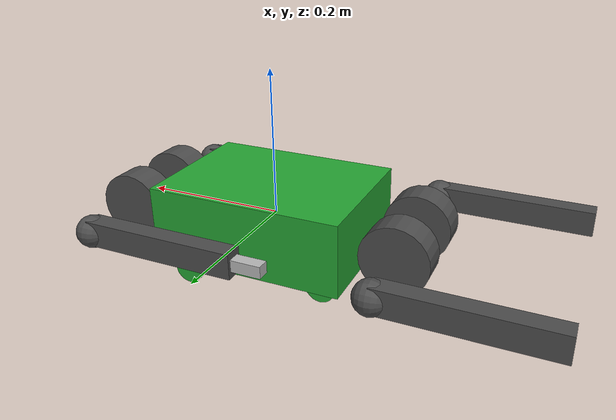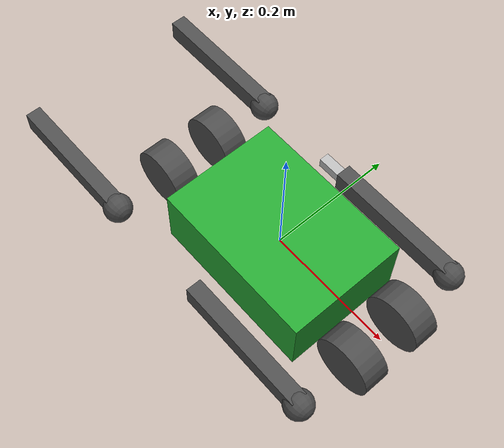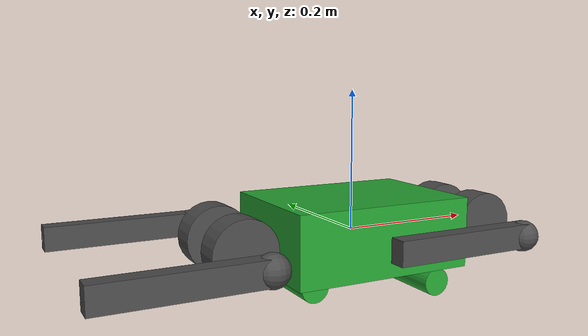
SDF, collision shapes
<sdf version='1.7'>
  <model name='go2_description'>
    <link name='body'>
      <inertial>
        <pose>0.021109 0 -0.005366 0 -0 0</pose>
        <mass>6.922</mass>
        <inertia>
          <ixx>0.02458</ixx>
          <ixy>0.00012166</ixy>
          <ixz>0.00148501</ixz>
          <iyy>0.0981775</iyy>
          <iyz>-3.12e-05</iyz>
          <izz>0.1071</izz>
        </inertia>
      </inertial>
      <collision name='body_collision_collision'>
        <pose>0 0 0 0 -0 0</pose>
        <geometry>
          <box>
            <size>0.267 0.19 0.1</size>
          </box>
        </geometry>
        <surface>
          <contact>
            <ode/>
          </contact>
          <friction>
            <ode/>
          </friction>
        </surface>
      </collision>
      <collision name='body_fixed_joint_lump__imu_link_collision_1'>
        <pose>0 0 0 0 -0 0</pose>
        <geometry>
          <box>
            <size>0.001 0.001 0.001</size>
          </box>
        </geometry>
        <surface>
          <contact>
            <ode/>
          </contact>
          <friction>
            <ode>
              <mu>0.2</mu>
              <mu2>0.2</mu2>
            </ode>
          </friction>
        </surface>
      </collision>
      <collision name='body_fixed_joint_lump__front_pad_collision_2'>
        <pose>0.1 0 -0.075 1.5708 -0 0</pose>
        <geometry>
          <cylinder>
            <length>0.15</length>
            <radius>0.02</radius>
          </cylinder>
        </geometry>
      </collision>
      <collision name='body_fixed_joint_lump__rear_pad_collision_3'>
        <pose>-0.1 0 -0.055 1.5708 -0 0</pose>
        <geometry>
          <cylinder>
            <length>0.15</length>
            <radius>0.02</radius>
          </cylinder>
        </geometry>
      </collision>
      <visual name='body_visual'>
        <pose>0 0 0 0 -0 0</pose>
        <geometry>
          <box>
            <size>0.001 0.001 0.001</size>
          </box>
        </geometry>
        <material>
          <script>
            <name>Gazebo/Green</name>
            <uri>file://media/materials/scripts/gazebo.material</uri>
          </script>
        </material>
      </visual>
      <visual name='body_visual_visual_1'>
        <pose>0 0 0 0 -0 0</pose>
        <geometry>
          <mesh>
            <scale>1 1 1</scale>
            <uri>model://go2_description/meshes/trunk.dae</uri>
          </mesh>
        </geometry>
        <material>
          <script>
            <name>Gazebo/Green</name>
            <uri>file://media/materials/scripts/gazebo.material</uri>
          </script>
        </material>
      </visual>
      <visual name='body_fixed_joint_lump__imu_link_visual_2'>
        <pose>0 0 0 0 -0 0</pose>
        <geometry>
          <box>
            <size>0.001 0.001 0.001</size>
          </box>
        </geometry>
        <material>
          <script>
            <name>Gazebo/Red</name>
            <uri>file://media/materials/scripts/gazebo.material</uri>
          </script>
        </material>
      </visual>
      <gravity>1</gravity>
      <gravity>1</gravity>
      <sensor name='imu_sensor' type='imu'>
        <always_on>1</always_on>
        <update_rate>1000</update_rate>
        <visualize>1</visualize>
        <topic>__default_topic__</topic>
        <plugin name='imu_plugin' filename='libgazebo_ros_imu_sensor.so'>
          <topicName>trunk_imu</topicName>
          <bodyName>imu_link</bodyName>
          <updateRateHZ>1000.0</updateRateHZ>
          <gaussianNoise>0.0</gaussianNoise>
          <xyzOffset>0 0 0</xyzOffset>
          <rpyOffset>0 0 0</rpyOffset>
          <frameName>imu_link</frameName>
        </plugin>
        <pose>0 0 0 0 -0 0</pose>
      </sensor>
    </link>

        <!-- Define the new link for the payload -->
    <link name="payload_link">
      <pose frame=''>0 0 0 0 0 0</pose>
      <inertial>
        <mass>0.001</mass>
        <inertia>
          <ixx>0.0</ixx>
          <iyy>0.0</iyy>
          <izz>0.0</izz>
        </inertia>
      </inertial>
      <collision name="payload_collision">
        <geometry>
          <box>
            <size>0.02 0.01 0.01</size>
          </box>
        </geometry>
      </collision>
      <visual name="payload_visual">
        <geometry>
          <box>
            <size>0.2 0.1 0.1</size>
          </box>
        </geometry>
        <material>
          <ambient>1 0 0 1</ambient>
          <diffuse>0 1 0 1</diffuse>
        </material>
      </visual>
    </link>

    <joint name="payload_joint" type="fixed">
      <parent>body</parent>
      <child>payload_link</child>
      <pose frame=''>0 0 0.11 0 0 0</pose>
    </joint>

    <joint name='10' type='revolute'>
      <pose relative_to='body'>0.1934 -0.0465 0 0 -0 0</pose>
      <parent>body</parent>
      <child>hip2</child>
      <axis>
        <xyz>1 0 0</xyz>
        <limit>
          <lower>-0.802851</lower>
          <upper>0.802851</upper>
          <effort>23.7</effort>
          <velocity>30</velocity>
        </limit>
        <dynamics>
          <damping>0</damping>
          <friction>0</friction>
          <spring_reference>0</spring_reference>
          <spring_stiffness>0</spring_stiffness>
        </dynamics>
      </axis>
    </joint>
    <link name='hip2'>
      <pose relative_to='10'>0 0 0 0 -0 0</pose>
      <inertial>
        <pose>-0.003311 -0.000635 3.1e-05 0 -0 0</pose>
        <mass>0.678</mass>
        <inertia>
          <ixx>0.000469246</ixx>
          <ixy>9.409e-06</ixy>
          <ixz>-3.42e-07</ixz>
          <iyy>0.00080749</iyy>
          <iyz>4.66e-07</iyz>
          <izz>0.000552929</izz>
        </inertia>
      </inertial>
      <collision name='hip2_collision_collision'>
        <pose>0 0 0 1.5708 -0 0</pose>
        <geometry>
          <cylinder>
            <length>0.04</length>
            <radius>0.046</radius>
          </cylinder>
        </geometry>
        <surface>
          <contact>
            <ode/>
          </contact>
          <friction>
            <ode>
              <mu>0.2</mu>
              <mu2>0.2</mu2>
            </ode>
          </friction>
        </surface>
      </collision>
      <visual name='hip2_visual_visual'>
        <pose>0 0 0 -3.14159 0 0</pose>
        <geometry>
          <mesh>
            <scale>1 1 1</scale>
            <uri>model://go2_description/meshes/hip.dae</uri>
          </mesh>
        </geometry>
        <material>
          <script>
            <name>Gazebo/DarkGrey</name>
            <uri>file://media/materials/scripts/gazebo.material</uri>
          </script>
        </material>
      </visual>
    </link>
    <joint name='4' type='revolute'>
      <pose relative_to='hip2'>0 -0.0955 0 0 1.5708 0</pose>
      <parent>hip2</parent>
      <child>upper2</child>
      <axis>
        <xyz>0 -1 0</xyz>
        <limit>
          <lower>-2.61799</lower>
          <upper>2.61799</upper>
          <effort>23.7</effort>
          <velocity>30</velocity>
        </limit>
        <dynamics>
          <damping>0</damping>
          <friction>0</friction>
          <spring_reference>0</spring_reference>
          <spring_stiffness>0</spring_stiffness>
        </dynamics>
      </axis>
    </joint>
    <link name='upper2'>
      <pose relative_to='4'>0 0 0 0 -0 0</pose>
      <inertial>
        <pose>-0.003237 0.022327 -0.027326 0 -0 0</pose>
        <mass>1.241</mass>
        <inertia>
          <ixx>0.00552906</ixx>
          <ixy>-4.825e-06</ixy>
          <ixz>0.000343869</ixz>
          <iyy>0.00513934</iyy>
          <iyz>-2.2448e-05</iyz>
          <izz>0.00136779</izz>
        </inertia>
      </inertial>
      <collision name='upper2_collision_collision'>
        <pose>0 0 -0.1065 0 1.5708 0</pose>
        <geometry>
          <box>
            <size>0.213 0.0245 0.034</size>
          </box>
        </geometry>
        <surface>
          <contact>
            <ode>
              <kp>1e+06</kp>
              <kd>1</kd>
            </ode>
          </contact>
          <friction>
            <ode>
              <mu>0.2</mu>
              <mu2>0.2</mu2>
            </ode>
          </friction>
        </surface>
      </collision>
      <visual name='upper2_visual_visual'>
        <pose>0 0 0 0 -0 0</pose>
        <geometry>
          <mesh>
            <scale>1 1 1</scale>
            <uri>model://go2_description/meshes/thigh_mirror.dae</uri>
          </mesh>
        </geometry>
        <material>
          <script>
            <name>Gazebo/DarkGrey</name>
            <uri>file://media/materials/scripts/gazebo.material</uri>
          </script>
        </material>
      </visual>
      <self_collide>0</self_collide>
    </link>
    <joint name='5' type='revolute'>
      <pose relative_to='upper2'>0 0 -0.213 -3.14159 0 -3.14159</pose>
      <parent>upper2</parent>
      <child>lower2</child>
      <axis>
        <xyz>0 1 0</xyz>
        <limit>
          <lower>0.445059</lower>
          <upper>2.22529</upper>
          <effort>45</effort>
          <velocity>15.7</velocity>
        </limit>
        <dynamics>
          <damping>0</damping>
          <friction>0</friction>
          <spring_reference>0</spring_reference>
          <spring_stiffness>0</spring_stiffness>
        </dynamics>
      </axis>
    </joint>
    <link name='lower2'>
      <pose relative_to='5'>0 0 0 0 -0 0</pose>
      <inertial>
        <pose>0.006435 0 -0.107388 0 -0 0</pose>
        <mass>0.243</mass>
        <inertia>
          <ixx>0.00299797</ixx>
          <ixy>0</ixy>
          <ixz>-0.000141163</ixz>
          <iyy>0.00301402</iyy>
          <iyz>0</iyz>
          <izz>3.2426e-05</izz>
        </inertia>
      </inertial>
      <collision name='lower2_collision_collision'>
        <pose>0 0 -0.115 0 1.5708 0</pose>
        <geometry>
          <box>
            <size>0.2 0.016 0.016</size>
          </box>
        </geometry>
        <surface>
          <contact>
            <ode/>
          </contact>
          <friction>
            <ode>
              <mu>0.2</mu>
              <mu2>0.2</mu2>
            </ode>
          </friction>
        </surface>
      </collision>
      <visual name='lower2_visual_visual'>
        <pose>0 0 0 0 -0 0</pose>
        <geometry>
          <mesh>
            <scale>1 1 1</scale>
            <uri>model://go2_description/meshes/calf.dae</uri>
          </mesh>
        </geometry>
      </visual>
      <self_collide>0</self_collide>
    </link>
    <joint name='jtoe2' type='fixed'>
      <pose relative_to='lower2'>0 0 -0.213 0 -0 0</pose>
      <parent>lower2</parent>
      <child>toe2</child>
      <axis>
        <dynamics>
          <spring_reference>0</spring_reference>
          <spring_stiffness>0</spring_stiffness>
        </dynamics>
        <xyz>0 0 1</xyz>
        <limit>
          <lower>-1e+16</lower>
          <upper>1e+16</upper>
        </limit>
      </axis>
      <physics>
        <ode>
          <limit>
            <cfm>0</cfm>
            <erp>0.2</erp>
          </limit>
        </ode>
      </physics>
    </joint>
    <link name='toe2'>
      <pose relative_to='jtoe2'>0 0 0 0 -0 0</pose>
      <inertial>
        <pose>0 0 0 0 -0 0</pose>
        <mass>0.04</mass>
        <inertia>
          <ixx>9.6e-06</ixx>
          <ixy>0</ixy>
          <ixz>0</ixz>
          <iyy>9.6e-06</iyy>
          <iyz>0</iyz>
          <izz>9.6e-06</izz>
        </inertia>
      </inertial>
      <collision name='toe2_collision_collision'>
        <pose>-0.002 0 0 0 -0 0</pose>
        <geometry>
          <sphere>
            <radius>0.022</radius>
          </sphere>
        </geometry>
        <surface>
          <contact>
            <ode>
              <kp>1e+06</kp>
              <kd>1</kd>
            </ode>
          </contact>
          <friction>
            <ode>
              <mu>0.6</mu>
              <mu2>0.6</mu2>
            </ode>
          </friction>
        </surface>
      </collision>
      <visual name='toe2_visual_visual'>
        <pose>0 0 0 0 -0 0</pose>
        <geometry>
          <sphere>
            <radius>0.01</radius>
          </sphere>
        </geometry>
        <material>
          <script>
            <name>Gazebo/DarkGrey</name>
            <uri>file://media/materials/scripts/gazebo.material</uri>
          </script>
        </material>
      </visual>
      <sensor name='toe2_contact' type='contact'>
        <plugin name='toe2_plugin' filename='libgazebo_ros_bumper.so'>
          <alwaysOn>1</alwaysOn>
          <updateRate>500</updateRate>
          <bumperTopicName>gazebo/toe2_contact_state</bumperTopicName>
          <frameName>world</frameName>
        </plugin>
        <contact>
          <collision>toe2_collision</collision>
          <topic>__default_topic__</topic>
        </contact>
        <update_rate>500</update_rate>
      </sensor>
      <self_collide>0</self_collide>
    </link>
    <joint name='11' type='revolute'>
      <pose relative_to='body'>-0.1934 -0.0465 0 0 -0 0</pose>
      <parent>body</parent>
      <child>hip3</child>
      <axis>
        <xyz>1 0 0</xyz>
        <limit>
          <lower>-0.802851</lower>
          <upper>0.802851</upper>
          <effort>23.7</effort>
          <velocity>30</velocity>
        </limit>
        <dynamics>
          <damping>0</damping>
          <friction>0</friction>
          <spring_reference>0</spring_reference>
          <spring_stiffness>0</spring_stiffness>
        </dynamics>
      </axis>
    </joint>
    <link name='hip3'>
      <pose relative_to='11'>0 0 0 0 -0 0</pose>
      <inertial>
        <pose>0.003311 -0.000635 3.1e-05 0 -0 0</pose>
        <mass>0.678</mass>
        <inertia>
          <ixx>0.000469246</ixx>
          <ixy>-9.409e-06</ixy>
          <ixz>3.42e-07</ixz>
          <iyy>0.00080749</iyy>
          <iyz>4.66e-07</iyz>
          <izz>0.000552929</izz>
        </inertia>
      </inertial>
      <collision name='hip3_collision_collision'>
        <pose>0 0 0 1.5708 -0 0</pose>
        <geometry>
          <cylinder>
            <length>0.04</length>
            <radius>0.046</radius>
          </cylinder>
        </geometry>
        <surface>
          <contact>
            <ode/>
          </contact>
          <friction>
            <ode>
              <mu>0.2</mu>
              <mu2>0.2</mu2>
            </ode>
          </friction>
        </surface>
      </collision>
      <visual name='hip3_visual_visual'>
        <pose>0 0 0 0 -0 3.14159</pose>
        <geometry>
          <mesh>
            <scale>1 1 1</scale>
            <uri>model://go2_description/meshes/hip.dae</uri>
          </mesh>
        </geometry>
        <material>
          <script>
            <name>Gazebo/DarkGrey</name>
            <uri>file://media/materials/scripts/gazebo.material</uri>
          </script>
        </material>
      </visual>
    </link>
    <joint name='6' type='revolute'>
      <pose relative_to='hip3'>0 -0.0955 0 0 1.5708 0</pose>
      <parent>hip3</parent>
      <child>upper3</child>
      <axis>
        <xyz>0 -1 0</xyz>
        <limit>
          <lower>-2.61799</lower>
          <upper>2.61799</upper>
          <effort>23.7</effort>
          <velocity>30</velocity>
        </limit>
        <dynamics>
          <damping>0</damping>
          <friction>0</friction>
          <spring_reference>0</spring_reference>
          <spring_stiffness>0</spring_stiffness>
        </dynamics>
      </axis>
    </joint>
    <link name='upper3'>
      <pose relative_to='6'>0 0 0 0 -0 0</pose>
      <inertial>
        <pose>-0.003237 0.022327 -0.027326 0 -0 0</pose>
        <mass>1.241</mass>
        <inertia>
          <ixx>0.00552906</ixx>
          <ixy>-4.825e-06</ixy>
          <ixz>0.000343869</ixz>
          <iyy>0.00513934</iyy>
          <iyz>-2.2448e-05</iyz>
          <izz>0.00136779</izz>
        </inertia>
      </inertial>
      <collision name='upper3_collision_collision'>
        <pose>0 0 -0.1065 0 1.5708 0</pose>
        <geometry>
          <box>
            <size>0.213 0.0245 0.034</size>
          </box>
        </geometry>
        <surface>
          <contact>
            <ode>
              <kp>1e+06</kp>
              <kd>1</kd>
            </ode>
          </contact>
          <friction>
            <ode>
              <mu>0.2</mu>
              <mu2>0.2</mu2>
            </ode>
          </friction>
        </surface>
      </collision>
      <visual name='upper3_visual_visual'>
        <pose>0 0 0 0 -0 0</pose>
        <geometry>
          <mesh>
            <scale>1 1 1</scale>
            <uri>model://go2_description/meshes/thigh_mirror.dae</uri>
          </mesh>
        </geometry>
        <material>
          <script>
            <name>Gazebo/DarkGrey</name>
            <uri>file://media/materials/scripts/gazebo.material</uri>
          </script>
        </material>
      </visual>
      <self_collide>0</self_collide>
    </link>
    <joint name='7' type='revolute'>
      <pose relative_to='upper3'>0 0 -0.213 -3.14159 0 -3.14159</pose>
      <parent>upper3</parent>
      <child>lower3</child>
      <axis>
        <xyz>0 1 0</xyz>
        <limit>
          <lower>0.445059</lower>
          <upper>2.22529</upper>
          <effort>45</effort>
          <velocity>15.7</velocity>
        </limit>
        <dynamics>
          <damping>0</damping>
          <friction>0</friction>
          <spring_reference>0</spring_reference>
          <spring_stiffness>0</spring_stiffness>
        </dynamics>
      </axis>
    </joint>
    <link name='lower3'>
      <pose relative_to='7'>0 0 0 0 -0 0</pose>
      <inertial>
        <pose>0.006435 0 -0.107388 0 -0 0</pose>
        <mass>0.243</mass>
        <inertia>
          <ixx>0.00299797</ixx>
          <ixy>0</ixy>
          <ixz>-0.000141163</ixz>
          <iyy>0.00301402</iyy>
          <iyz>0</iyz>
          <izz>3.2426e-05</izz>
        </inertia>
      </inertial>
      <collision name='lower3_collision_collision'>
        <pose>0 0 -0.1 0 1.5708 0</pose>
        <geometry>
          <box>
            <size>0.2 0.016 0.016</size>
          </box>
        </geometry>
        <surface>
          <contact>
            <ode/>
          </contact>
          <friction>
            <ode>
              <mu>0.2</mu>
              <mu2>0.2</mu2>
            </ode>
          </friction>
        </surface>
      </collision>
      <visual name='lower3_visual_visual'>
        <pose>0 0 0 0 -0 0</pose>
        <geometry>
          <mesh>
            <scale>1 1 1</scale>
            <uri>model://go2_description/meshes/calf.dae</uri>
          </mesh>
        </geometry>
      </visual>
      <self_collide>0</self_collide>
    </link>
    <joint name='jtoe3' type='fixed'>
      <pose relative_to='lower3'>0 0 -0.213 0 -0 0</pose>
      <parent>lower3</parent>
      <child>toe3</child>
      <axis>
        <dynamics>
          <spring_reference>0</spring_reference>
          <spring_stiffness>0</spring_stiffness>
        </dynamics>
        <xyz>0 0 1</xyz>
        <limit>
          <lower>-1e+16</lower>
          <upper>1e+16</upper>
        </limit>
      </axis>
      <physics>
        <ode>
          <limit>
            <cfm>0</cfm>
            <erp>0.2</erp>
          </limit>
        </ode>
      </physics>
    </joint>
    <link name='toe3'>
      <pose relative_to='jtoe3'>0 0 0 0 -0 0</pose>
      <inertial>
        <pose>0 0 0 0 -0 0</pose>
        <mass>0.04</mass>
        <inertia>
          <ixx>9.6e-06</ixx>
          <ixy>0</ixy>
          <ixz>0</ixz>
          <iyy>9.6e-06</iyy>
          <iyz>0</iyz>
          <izz>9.6e-06</izz>
        </inertia>
      </inertial>
      <collision name='toe3_collision_collision'>
        <pose>0 0 0 0 -0 0</pose>
        <geometry>
          <sphere>
            <radius>0.022</radius>
          </sphere>
        </geometry>
        <surface>
          <contact>
            <ode>
              <kp>1e+06</kp>
              <kd>1</kd>
            </ode>
          </contact>
          <friction>
            <ode>
              <mu>0.6</mu>
              <mu2>0.6</mu2>
            </ode>
          </friction>
        </surface>
      </collision>
      <visual name='toe3_visual_visual'>
        <pose>0 0 0 0 -0 0</pose>
        <geometry>
          <sphere>
            <radius>0.01</radius>
          </sphere>
        </geometry>
        <material>
          <script>
            <name>Gazebo/DarkGrey</name>
            <uri>file://media/materials/scripts/gazebo.material</uri>
          </script>
        </material>
      </visual>
      <sensor name='toe3_contact' type='contact'>
        <plugin name='toe3_plugin' filename='libgazebo_ros_bumper.so'>
          <alwaysOn>1</alwaysOn>
          <updateRate>500</updateRate>
          <bumperTopicName>gazebo/toe3_contact_state</bumperTopicName>
          <frameName>world</frameName>
        </plugin>
        <contact>
          <collision>toe3_collision</collision>
          <topic>__default_topic__</topic>
        </contact>
        <update_rate>500</update_rate>
      </sensor>
      <self_collide>0</self_collide>
    </link>
    <joint name='8' type='revolute'>
      <pose relative_to='body'>0.1934 0.0465 0 0 -0 0</pose>
      <parent>body</parent>
      <child>hip0</child>
      <axis>
        <xyz>1 0 0</xyz>
        <limit>
          <lower>-0.802851</lower>
          <upper>0.802851</upper>
          <effort>23.7</effort>
          <velocity>30</velocity>
        </limit>
        <dynamics>
          <damping>0</damping>
          <friction>0</friction>
          <spring_reference>0</spring_reference>
          <spring_stiffness>0</spring_stiffness>
        </dynamics>
      </axis>
    </joint>
    <link name='hip0'>
      <pose relative_to='8'>0 0 0 0 -0 0</pose>
      <inertial>
        <pose>-0.003311 0.000635 3.1e-05 0 -0 0</pose>
        <mass>0.678</mass>
        <inertia>
          <ixx>0.000469246</ixx>
          <ixy>-9.409e-06</ixy>
          <ixz>-3.42e-07</ixz>
          <iyy>0.00080749</iyy>
          <iyz>-4.66e-07</iyz>
          <izz>0.000552929</izz>
        </inertia>
      </inertial>
      <collision name='hip0_collision_collision'>
        <pose>0 0 0 1.5708 -0 0</pose>
        <geometry>
          <cylinder>
            <length>0.04</length>
            <radius>0.046</radius>
          </cylinder>
        </geometry>
        <surface>
          <contact>
            <ode/>
          </contact>
          <friction>
            <ode>
              <mu>0.2</mu>
              <mu2>0.2</mu2>
            </ode>
          </friction>
        </surface>
      </collision>
      <visual name='hip0_visual_visual'>
        <pose>0 0 0 0 -0 0</pose>
        <geometry>
          <mesh>
            <scale>1 1 1</scale>
            <uri>model://go2_description/meshes/hip.dae</uri>
          </mesh>
        </geometry>
        <material>
          <script>
            <name>Gazebo/DarkGrey</name>
            <uri>file://media/materials/scripts/gazebo.material</uri>
          </script>
        </material>
      </visual>
    </link>
    <joint name='0' type='revolute'>
      <pose relative_to='hip0'>0 0.0955 0 0 1.5708 0</pose>
      <parent>hip0</parent>
      <child>upper0</child>
      <axis>
        <xyz>0 -1 0</xyz>
        <limit>
          <lower>-2.61799</lower>
          <upper>2.61799</upper>
          <effort>23.7</effort>
          <velocity>30</velocity>
        </limit>
        <dynamics>
          <damping>0</damping>
          <friction>0</friction>
          <spring_reference>0</spring_reference>
          <spring_stiffness>0</spring_stiffness>
        </dynamics>
      </axis>
    </joint>
    <link name='upper0'>
      <pose relative_to='0'>0 0 0 0 -0 0</pose>
      <inertial>
        <pose>-0.003237 -0.022327 -0.027326 0 -0 0</pose>
        <mass>1.241</mass>
        <inertia>
          <ixx>0.00552906</ixx>
          <ixy>4.825e-06</ixy>
          <ixz>0.000343869</ixz>
          <iyy>0.00513934</iyy>
          <iyz>2.2448e-05</iyz>
          <izz>0.00136779</izz>
        </inertia>
      </inertial>
      <collision name='upper0_collision_collision'>
        <pose>0 0 -0.1065 0 1.5708 0</pose>
        <geometry>
          <box>
            <size>0.213 0.0245 0.034</size>
          </box>
        </geometry>
        <surface>
          <contact>
            <ode>
              <kp>1e+06</kp>
              <kd>1</kd>
            </ode>
          </contact>
          <friction>
            <ode>
              <mu>0.2</mu>
              <mu2>0.2</mu2>
            </ode>
          </friction>
        </surface>
      </collision>
      <visual name='upper0_visual_visual'>
        <pose>0 0 0 0 -0 0</pose>
        <geometry>
          <mesh>
            <scale>1 1 1</scale>
            <uri>model://go2_description/meshes/thigh.dae</uri>
          </mesh>
        </geometry>
        <material>
          <script>
            <name>Gazebo/DarkGrey</name>
            <uri>file://media/materials/scripts/gazebo.material</uri>
          </script>
        </material>
      </visual>
      <self_collide>0</self_collide>
    </link>
    <joint name='1' type='revolute'>
      <pose relative_to='upper0'>0 0 -0.213 -3.14159 0 -3.14159</pose>
      <parent>upper0</parent>
      <child>lower0</child>
      <axis>
        <xyz>0 1 0</xyz>
        <limit>
          <lower>0.445059</lower>
          <upper>2.22529</upper>
          <effort>45</effort>
          <velocity>15.7</velocity>
        </limit>
        <dynamics>
          <damping>0</damping>
          <friction>0</friction>
          <spring_reference>0</spring_reference>
          <spring_stiffness>0</spring_stiffness>
        </dynamics>
      </axis>
    </joint>
    <link name='lower0'>
      <pose relative_to='1'>0 0 0 0 -0 0</pose>
      <inertial>
        <pose>0.006435 0 -0.107388 0 -0 0</pose>
        <mass>0.243</mass>
        <inertia>
          <ixx>0.00299797</ixx>
          <ixy>0</ixy>
          <ixz>-0.000141163</ixz>
          <iyy>0.00301402</iyy>
          <iyz>0</iyz>
          <izz>3.2426e-05</izz>
        </inertia>
      </inertial>
      <collision name='lower0_collision_collision'>
        <pose>0 0 -0.06 0 1.5708 0</pose>
        <geometry>
          <box>
            <size>0.2 0.016 0.016</size>
          </box>
        </geometry>
        <surface>
          <contact>
            <ode/>
          </contact>
          <friction>
            <ode>
              <mu>0.2</mu>
              <mu2>0.2</mu2>
            </ode>
          </friction>
        </surface>
      </collision>
      <visual name='lower0_visual_visual'>
        <pose>0 0 0 0 -0 0</pose>
        <geometry>
          <mesh>
            <scale>1 1 1</scale>
            <uri>model://go2_description/meshes/calf.dae</uri>
          </mesh>
        </geometry>
      </visual>
      <self_collide>0</self_collide>
    </link>
    <joint name='jtoe0' type='fixed'>
      <pose relative_to='lower0'>0 0 -0.213 0 -0 0</pose>
      <parent>lower0</parent>
      <child>toe0</child>
      <axis>
        <dynamics>
          <spring_reference>0</spring_reference>
          <spring_stiffness>0</spring_stiffness>
        </dynamics>
        <xyz>0 0 1</xyz>
        <limit>
          <lower>-1e+16</lower>
          <upper>1e+16</upper>
        </limit>
      </axis>
      <physics>
        <ode>
          <limit>
            <cfm>0</cfm>
            <erp>0.2</erp>
          </limit>
        </ode>
      </physics>
    </joint>
    <link name='toe0'>
      <pose relative_to='jtoe0'>0 0 0 0 -0 0</pose>
      <inertial>
        <pose>0 0 0 0 -0 0</pose>
        <mass>0.04</mass>
        <inertia>
          <ixx>9.6e-06</ixx>
          <ixy>0</ixy>
          <ixz>0</ixz>
          <iyy>9.6e-06</iyy>
          <iyz>0</iyz>
          <izz>9.6e-06</izz>
        </inertia>
      </inertial>
      <collision name='toe0_collision_collision'>
        <pose>-0.002 0 0 0 -0 0</pose>
        <geometry>
          <sphere>
            <radius>0.022</radius>
          </sphere>
        </geometry>
        <surface>
          <contact>
            <ode>
              <kp>1e+06</kp>
              <kd>1</kd>
            </ode>
          </contact>
          <friction>
            <ode>
              <mu>0.6</mu>
              <mu2>0.6</mu2>
            </ode>
          </friction>
        </surface>
      </collision>
      <visual name='toe0_visual_visual'>
        <pose>0 0 0 0 -0 0</pose>
        <geometry>
          <sphere>
            <radius>0.01</radius>
          </sphere>
        </geometry>
        <material>
          <script>
            <name>Gazebo/DarkGrey</name>
            <uri>file://media/materials/scripts/gazebo.material</uri>
          </script>
        </material>
      </visual>
      <sensor name='toe0_contact' type='contact'>
        <plugin name='toe0_plugin' filename='libgazebo_ros_bumper.so'>
          <alwaysOn>1</alwaysOn>
          <updateRate>500</updateRate>
          <bumperTopicName>gazebo/toe0_contact_state</bumperTopicName>
          <frameName>world</frameName>
        </plugin>
        <contact>
          <collision>toe0_collision</collision>
          <topic>__default_topic__</topic>
        </contact>
        <update_rate>500</update_rate>
      </sensor>
      <self_collide>0</self_collide>
    </link>
    <joint name='9' type='revolute'>
      <pose relative_to='body'>-0.1934 0.0465 0 0 -0 0</pose>
      <parent>body</parent>
      <child>hip1</child>
      <axis>
        <xyz>1 0 0</xyz>
        <limit>
          <lower>-0.802851</lower>
          <upper>0.802851</upper>
          <effort>23.7</effort>
          <velocity>30</velocity>
        </limit>
        <dynamics>
          <damping>0</damping>
          <friction>0</friction>
          <spring_reference>0</spring_reference>
          <spring_stiffness>0</spring_stiffness>
        </dynamics>
      </axis>
    </joint>
    <link name='hip1'>
      <pose relative_to='9'>0 0 0 0 -0 0</pose>
      <inertial>
        <pose>0.003311 0.000635 3.1e-05 0 -0 0</pose>
        <mass>0.678</mass>
        <inertia>
          <ixx>0.000469246</ixx>
          <ixy>9.409e-06</ixy>
          <ixz>3.42e-07</ixz>
          <iyy>0.00080749</iyy>
          <iyz>-4.66e-07</iyz>
          <izz>0.000552929</izz>
        </inertia>
      </inertial>
      <collision name='hip1_collision_collision'>
        <pose>0 0 0 1.5708 -0 0</pose>
        <geometry>
          <cylinder>
            <length>0.04</length>
            <radius>0.046</radius>
          </cylinder>
        </geometry>
        <surface>
          <contact>
            <ode/>
          </contact>
          <friction>
            <ode>
              <mu>0.2</mu>
              <mu2>0.2</mu2>
            </ode>
          </friction>
        </surface>
      </collision>
      <visual name='hip1_visual_visual'>
        <pose>0 0 0 3.14159 -0 3.14159</pose>
        <geometry>
          <mesh>
            <scale>1 1 1</scale>
            <uri>model://go2_description/meshes/hip.dae</uri>
          </mesh>
        </geometry>
        <material>
          <script>
            <name>Gazebo/DarkGrey</name>
            <uri>file://media/materials/scripts/gazebo.material</uri>
          </script>
        </material>
      </visual>
    </link>
    <joint name='2' type='revolute'>
      <pose relative_to='hip1'>0 0.0955 0 0 1.5708 0</pose>
      <parent>hip1</parent>
      <child>upper1</child>
      <axis>
        <xyz>0 -1 0</xyz>
        <limit>
          <lower>-2.61799</lower>
          <upper>2.61799</upper>
          <effort>23.7</effort>
          <velocity>30</velocity>
        </limit>
        <dynamics>
          <damping>0</damping>
          <friction>0</friction>
          <spring_reference>0</spring_reference>
          <spring_stiffness>0</spring_stiffness>
        </dynamics>
      </axis>
    </joint>
    <link name='upper1'>
      <pose relative_to='2'>0 0 0 0 -0 0</pose>
      <inertial>
        <pose>-0.003237 -0.022327 -0.027326 0 -0 0</pose>
        <mass>1.241</mass>
        <inertia>
          <ixx>0.00552906</ixx>
          <ixy>4.825e-06</ixy>
          <ixz>0.000343869</ixz>
          <iyy>0.00513934</iyy>
          <iyz>2.2448e-05</iyz>
          <izz>0.00136779</izz>
        </inertia>
      </inertial>
      <collision name='upper1_collision_collision'>
        <pose>0 0 -0.1065 0 1.5708 0</pose>
        <geometry>
          <box>
            <size>0.213 0.0245 0.034</size>
          </box>
        </geometry>
        <surface>
          <contact>
            <ode>
              <kp>1e+06</kp>
              <kd>1</kd>
            </ode>
          </contact>
          <friction>
            <ode>
              <mu>0.2</mu>
              <mu2>0.2</mu2>
            </ode>
          </friction>
        </surface>
      </collision>
      <visual name='upper1_visual_visual'>
        <pose>0 0 0 0 -0 0</pose>
        <geometry>
          <mesh>
            <scale>1 1 1</scale>
            <uri>model://go2_description/meshes/thigh.dae</uri>
          </mesh>
        </geometry>
        <material>
          <script>
            <name>Gazebo/DarkGrey</name>
            <uri>file://media/materials/scripts/gazebo.material</uri>
          </script>
        </material>
      </visual>
      <self_collide>0</self_collide>
    </link>
    <joint name='3' type='revolute'>
      <pose relative_to='upper1'>0 0 -0.213 -3.14159 0 -3.14159</pose>
      <parent>upper1</parent>
      <child>lower1</child>
      <axis>
        <xyz>0 1 0</xyz>
        <limit>
          <lower>0.445059</lower>
          <upper>2.22529</upper>
          <effort>45</effort>
          <velocity>15.7</velocity>
        </limit>
        <dynamics>
          <damping>0</damping>
          <friction>0</friction>
          <spring_reference>0</spring_reference>
          <spring_stiffness>0</spring_stiffness>
        </dynamics>
      </axis>
    </joint>
    <link name='lower1'>
      <pose relative_to='3'>0 0 0 0 -0 0</pose>
      <inertial>
        <pose>0.006435 0 -0.107388 0 -0 0</pose>
        <mass>0.243</mass>
        <inertia>
          <ixx>0.00299797</ixx>
          <ixy>0</ixy>
          <ixz>-0.000141163</ixz>
          <iyy>0.00301402</iyy>
          <iyz>0</iyz>
          <izz>3.2426e-05</izz>
        </inertia>
      </inertial>
      <collision name='lower1_collision_collision'>
        <pose>0 0 -0.1 0 1.5708 0</pose>
        <geometry>
          <box>
            <size>0.2 0.016 0.016</size>
          </box>
        </geometry>
        <surface>
          <contact>
            <ode/>
          </contact>
          <friction>
            <ode>
              <mu>0.2</mu>
              <mu2>0.2</mu2>
            </ode>
          </friction>
        </surface>
      </collision>
      <visual name='lower1_visual_visual'>
        <pose>0 0 0 0 -0 0</pose>
        <geometry>
          <mesh>
            <scale>1 1 1</scale>
            <uri>model://go2_description/meshes/calf.dae</uri>
          </mesh>
        </geometry>
      </visual>
      <self_collide>0</self_collide>
    </link>
    <joint name='jtoe1' type='fixed'>
      <pose relative_to='lower1'>0 0 -0.213 0 -0 0</pose>
      <parent>lower1</parent>
      <child>toe1</child>
      <axis>
        <dynamics>
          <spring_reference>0</spring_reference>
          <spring_stiffness>0</spring_stiffness>
        </dynamics>
        <xyz>0 0 1</xyz>
        <limit>
          <lower>-1e+16</lower>
          <upper>1e+16</upper>
        </limit>
      </axis>
      <physics>
        <ode>
          <limit>
            <cfm>0</cfm>
            <erp>0.2</erp>
          </limit>
        </ode>
      </physics>
    </joint>
    <link name='toe1'>
      <pose relative_to='jtoe1'>0 0 0 0 -0 0</pose>
      <inertial>
        <pose>0 0 0 0 -0 0</pose>
        <mass>0.04</mass>
        <inertia>
          <ixx>9.6e-06</ixx>
          <ixy>0</ixy>
          <ixz>0</ixz>
          <iyy>9.6e-06</iyy>
          <iyz>0</iyz>
          <izz>9.6e-06</izz>
        </inertia>
      </inertial>
      <collision name='toe1_collision_collision'>
        <pose>-0.002 0 0 0 -0 0</pose>
        <geometry>
          <sphere>
            <radius>0.022</radius>
          </sphere>
        </geometry>
        <surface>
          <contact>
            <ode>
              <kp>1e+06</kp>
              <kd>1</kd>
            </ode>
          </contact>
          <friction>
            <ode>
              <mu>0.6</mu>
              <mu2>0.6</mu2>
            </ode>
          </friction>
        </surface>
      </collision>
      <visual name='toe1_visual_visual'>
        <pose>0 0 0 0 -0 0</pose>
        <geometry>
          <sphere>
            <radius>0.01</radius>
          </sphere>
        </geometry>
        <material>
          <script>
            <name>Gazebo/DarkGrey</name>
            <uri>file://media/materials/scripts/gazebo.material</uri>
          </script>
        </material>
      </visual>
      <sensor name='toe1_contact' type='contact'>
        <plugin name='toe1_plugin' filename='libgazebo_ros_bumper.so'>
          <alwaysOn>1</alwaysOn>
          <updateRate>500</updateRate>
          <bumperTopicName>gazebo/toe1_contact_state</bumperTopicName>
          <frameName>world</frameName>
        </plugin>
        <contact>
          <collision>toe1_collision</collision>
          <topic>__default_topic__</topic>
        </contact>
        <update_rate>500</update_rate>
      </sensor>
      <self_collide>0</self_collide>
    </link>
    <plugin name='gazebo_ros_control' filename='libgazebo_ros_control.so'>
      <robotSimType>gazebo_ros_control/DefaultRobotHWSim</robotSimType>
    </plugin>
    <plugin name='ground_truth_estimator' filename='libground_truth_estimator.so'>
      <updateRateHZ>500.0</updateRateHZ>
    </plugin>
    <plugin name='gazebo_ros_force' filename='libgazebo_ros_force.so'>
      <topicName>/apply_force/trunk</topicName>
      <bodyName>body</bodyName>
      <xyzOffset>0 0 0</xyzOffset>
      <rpyOffset>0 -0 0</rpyOffset>
    </plugin>
    <frame name='imu_joint' attached_to='trunk'>
      <pose>0 0 0 0 -0 0</pose>
    </frame>
    <frame name='imu_link' attached_to='imu_joint'/>
    <frame name='floating_base' attached_to='body'>
      <pose>0 0 0 0 -0 0</pose>
    </frame>
    <frame name='trunk' attached_to='floating_base'/>
    <frame name='front_pad_fixed' attached_to='body'>
      <pose>0.1 0 -0.075 0 -0 0</pose>
    </frame>
    <frame name='front_pad' attached_to='front_pad_fixed'/>
    <frame name='rear_pad_fixed' attached_to='body'>
      <pose>-0.1 0 -0.055 0 -0 0</pose>
    </frame>
    <frame name='rear_pad' attached_to='rear_pad_fixed'/>
  </model>
</sdf>
